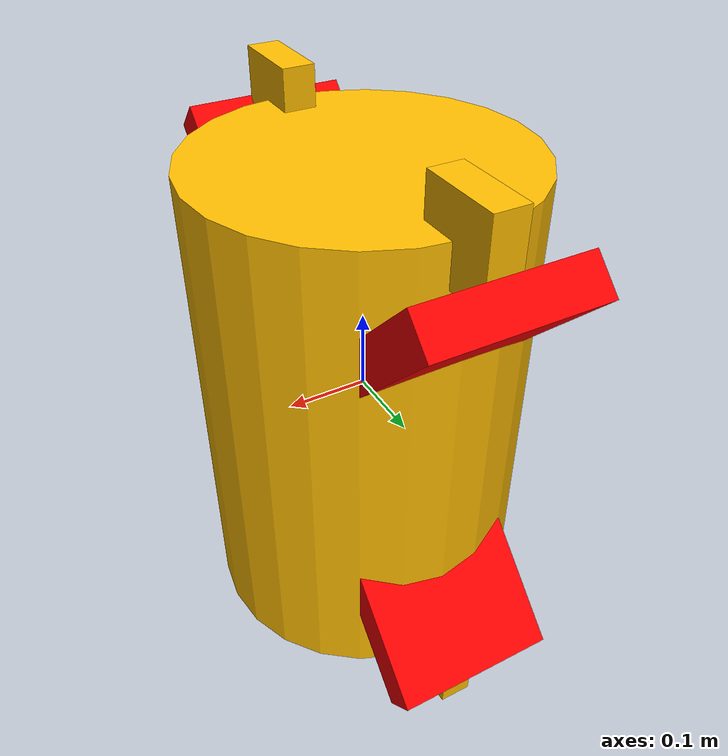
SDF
<?xml version="1.0"?>
<sdf version="1.6">
  <model name="SousMarin_Config1_v1">
    <!-- Body -->
    <link name="Chassis">
      <inertial>
        <mass>10</mass>
        <inertia>
          <ixx>1.825</ixx>
          <ixy>0</ixy>
          <ixz>0</ixz>
          <iyy>1.825</iyy>
          <iyz>0</iyz>
          <izz>0.05</izz>
        </inertia>
      </inertial>

      <collision name="main_body">
        <geometry>
          <cylinder>
            <radius>0.2</radius>
            <length>0.6</length>
          </cylinder>
        </geometry>
      </collision>

      <visual name="visual">
        <geometry>
          <cylinder>
            <radius>0.2</radius>
            <length>0.6</length>
          </cylinder>
        </geometry>
        <material>
            <ambient>1 0.74 0 1</ambient>
            <diffuse>1 0.74 0 1</diffuse>
            <specular>1 0.74 0 1</specular>
        </material>
      </visual>

      <sensor name="imu_sensor" type="imu">
        <always_on>1</always_on>
        <update_rate>250</update_rate>
        <topic>imu</topic>
        <visualize>true</visualize>
        <imu>
            <enable_orientation>0</enable_orientation>
            <angular_velocity>
                <x>
                    <noise type="gaussian">
                        <mean>0</mean>
                        <stddev>0.009</stddev>
                        <bias_mean>0.00075</bias_mean>
                        <bias_stddev>0.005</bias_stddev>
                        <dynamic_bias_stddev>0.00002</dynamic_bias_stddev>
                        <dynamic_bias_correlation_time>400.0</dynamic_bias_correlation_time>
                        <precision>0.00025</precision>
                    </noise>
                </x>
                <y>
                    <noise type="gaussian">
                        <mean>0
                        </mean>
                        <stddev>0.009
                        </stddev>
                        <bias_mean>0.00075
                        </bias_mean>
                        <bias_stddev>0.005
                        </bias_stddev>
                        <dynamic_bias_stddev>0.00002
                        </dynamic_bias_stddev>
                        <dynamic_bias_correlation_time>400.0
                        </dynamic_bias_correlation_time>
                        <precision>0.00025
                        </precision>
                    </noise>
                </y>
                <z>
                    <noise type="gaussian">
                        <mean>0
                        </mean>
                        <stddev>0.009
                        </stddev>
                        <bias_mean>0.00075
                        </bias_mean>
                        <bias_stddev>0.005
                        </bias_stddev>
                        <dynamic_bias_stddev>0.00002
                        </dynamic_bias_stddev>
                        <dynamic_bias_correlation_time>400.0
                        </dynamic_bias_correlation_time>
                        <precision>0.00025
                        </precision>
                    </noise>
                </z>
            </angular_velocity>
            <linear_acceleration>
                <x>
                    <noise type="gaussian">
                        <mean>0
                        </mean>
                        <stddev>0.021
                        </stddev>
                        <bias_mean>0.05
                        </bias_mean>
                        <bias_stddev>0.0075
                        </bias_stddev>
                        <dynamic_bias_stddev>0.000375
                        </dynamic_bias_stddev>
                        <dynamic_bias_correlation_time>175.0
                        </dynamic_bias_correlation_time>
                        <precision>0.005
                        </precision>
                    </noise>
                </x>
                <y>
                    <noise type="gaussian">
                        <mean>0
                        </mean>
                        <stddev>0.021
                        </stddev>
                        <bias_mean>0.05
                        </bias_mean>
                        <bias_stddev>0.0075
                        </bias_stddev>
                        <dynamic_bias_stddev>0.000375
                        </dynamic_bias_stddev>
                        <dynamic_bias_correlation_time>175.0
                        </dynamic_bias_correlation_time>
                        <precision>0.005
                        </precision>
                    </noise>
                </y>
                <z>
                    <noise type="gaussian">
                        <mean>0
                        </mean>
                        <stddev>0.021
                        </stddev>
                        <bias_mean>0.05
                        </bias_mean>
                        <bias_stddev>0.0075
                        </bias_stddev>
                        <dynamic_bias_stddev>0.000375
                        </dynamic_bias_stddev>
                        <dynamic_bias_correlation_time>175.0
                        </dynamic_bias_correlation_time>
                        <precision>0.005
                        </precision>
                    </noise>
                </z>
            </linear_acceleration>
        </imu>
      </sensor>

      <sensor name="gps" type="navsat">
          <always_on>1</always_on>
          <update_rate>1</update_rate>
          <topic>gps</topic>
          <visualize>true</visualize>
      </sensor>

      <sensor name="magnetometer" type="magnetometer">
          <always_on>1</always_on>
          <update_rate>20</update_rate>
          <topic>magnetometer</topic>
          <visualize>true</visualize>
          <magnetometer>
              <x>
                  <noise type="gaussian">
                      <mean>0.000000080
                      </mean>
                      <bias_mean>0.000000400
                      </bias_mean>
                  </noise>
              </x>
              <y>
                  <noise type="gaussian">
                      <mean>0.000000080
                      </mean>
                      <bias_mean>0.000000400
                      </bias_mean>
                  </noise>
              </y>
              <z>
                  <noise type="gaussian">
                      <mean>0.000000080
                      </mean>
                      <bias_mean>0.000000400
                      </bias_mean>
                  </noise>
              </z>
          </magnetometer>
      </sensor>

      <sensor name="scan_omni" type="gpu_lidar">
          <pose>0.21 0 0 0 0 0</pose>
          <update_rate>10</update_rate>
          <topic>gpu_lidar</topic>
          <visualize>true</visualize>
          <lidar>
              <scan>
                  <horizontal>
                      <!-- Real samples value is 1800 -->
                      <samples>1800
                      </samples>
                      <resolution>1
                      </resolution>
                      <min_angle>-3.141592654
                      </min_angle>
                      <max_angle>3.141592654
                      </max_angle>
                  </horizontal>
                  <vertical>
                      <samples>16
                      </samples>
                      <resolution>1
                      </resolution>
                      <min_angle>-0.261799388
                      </min_angle>
                      <max_angle>0.261799388
                      </max_angle>
                  </vertical>
              </scan>
              <range>
                  <min>0.2
                  </min>
                  <max>100.0
                  </max>
                  <resolution>0.01
                  </resolution>
              </range>
              <noise>
                  <type>gaussian
                  </type>
                  <mean>0
                  </mean>
                  <!-- Change the sdfdev value to 0.01 to add noise in to the sensor. You can set other values if you want. -->
                  <stddev>0.01
                  </stddev>
              </noise>
          </lidar>
          <always_on>false
          </always_on>
          <visualize>false
          </visualize>
      </sensor>

      <sensor name="camera_front" type="camera">
          <pose>0 0 0.3 0 -1.57 0</pose>
          <always_on>1</always_on>
          <update_rate>20</update_rate>
          <topic>camera_front</topic>
          <visualize>true</visualize>
          <camera name="camera_front">
              <horizontal_fov>2</horizontal_fov>
              <lens>
                  <intrinsics>
                    <!-- fx = fy = width / ( 2 * tan (hfov / 2 ) ) -->
                    <fx>1108.5</fx>
                    <fy>1108.5</fy>
                    <!-- cx = ( width + 1 ) / 2 -->
                    <cx>640.5</cx>
                    <!-- cy = ( height + 1 ) / 2 -->
                    <cy>480.5</cy>
                    <s>0</s>
                  </intrinsics>
              </lens>
              <distortion>
                  <k1>0.0</k1>
                  <k2>0.0</k2>
                  <k3>0.0</k3>
                  <p1>0.0</p1>
                  <p2>0.0</p2>
                  <center>0.5 0.5</center>
              </distortion>
              <image>
                  <width>1280</width>
                  <height>960</height>
                  <format>R8G8B8</format>
              </image>
              <clip>
                  <near>0.02</near>
                  <far>300</far>
              </clip>
              <noise>
                  <type>gaussian</type>
                  <mean>0</mean>
                  <stddev>0.007</stddev>
              </noise>
          </camera>
      </sensor>

    </link>

    <link name="Moteur1">
      <pose relative_to="Chassis">0 0.2 0.2 0.79 0 0</pose>
      <inertial>
        <mass>0.2</mass>
        <inertia>
          <ixx>4.25E-3</ixx>
          <ixy>0</ixy>
          <ixz>0</ixz>
          <iyy>4.25E-3</iyy>
          <iyz>0</iyz>
          <izz>8E-3</izz>
        </inertia>
      </inertial>

      <collision name="collision">
        <geometry>
          <box>
            <size>0.2 0.2 0.05</size>
          </box>
        </geometry>
      </collision>

      <visual name= "visual">
        <geometry>
          <box>
            <size>0.2 0.2 0.05</size>
          </box>
        </geometry>
        <material>
            <ambient>1 0 0 1</ambient>
            <diffuse>1 0 0 1</diffuse>
            <specular>1 0 0 1</specular>
        </material>
      </visual>
    </link>

    <joint name="Chassis_Moteur1" type="fixed">
      <parent>Chassis</parent>
      <child>Moteur1</child>
    </joint>

    <link name="Moteur2">
      <pose relative_to="Chassis">0 0.2 -0.2 -0.79 0 0</pose>
      <inertial>
        <mass>0.2</mass>
        <inertia>
          <ixx>4.25E-3</ixx>
          <ixy>0</ixy>
          <ixz>0</ixz>
          <iyy>4.25E-3</iyy>
          <iyz>0</iyz>
          <izz>8E-3</izz>
        </inertia>
      </inertial>

      <collision name="collision">
        <geometry>
          <box>
            <size>0.2 0.2 0.05</size>
          </box>
        </geometry>
      </collision>

      <visual name= "visual">
        <geometry>
          <box>
            <size>0.2 0.2 0.05</size>
          </box>
        </geometry>
        <material>
            <ambient>1 0 0 1</ambient>
            <diffuse>1 0 0 1</diffuse>
            <specular>1 0 0 1</specular>
        </material>
      </visual>
    </link>

    <joint name="Chassis_Moteur2" type="fixed">
      <parent>Chassis</parent>
      <child>Moteur2</child>
    </joint>

    <link name="Moteur3">
      <pose relative_to="Chassis">0 -0.2 -0.2 0.79 0 0</pose>
      <inertial>
        <mass>0.2</mass>
        <inertia>
          <ixx>4.25E-3</ixx>
          <ixy>0</ixy>
          <ixz>0</ixz>
          <iyy>4.25E-3</iyy>
          <iyz>0</iyz>
          <izz>8E-3</izz>
        </inertia>
      </inertial>

      <collision name="collision">
        <geometry>
          <box>
            <size>0.2 0.2 0.05</size>
          </box>
        </geometry>
      </collision>

      <visual name= "visual">
        <geometry>
          <box>
            <size>0.2 0.2 0.05</size>
          </box>
        </geometry>
        <material>
            <ambient>1 0 0 1</ambient>
            <diffuse>1 0 0 1</diffuse>
            <specular>1 0 0 1</specular>
        </material>
      </visual>
    </link>

    <joint name="Chassis_Moteur3" type="fixed">
      <parent>Chassis</parent>
      <child>Moteur3</child>
    </joint>

    <link name="Moteur4">
      <pose relative_to="Chassis">0 -0.2 0.2 -0.79 0 0</pose>
      <inertial>
        <mass>0.2</mass>
        <inertia>
          <ixx>4.25E-3</ixx>
          <ixy>0</ixy>
          <ixz>0</ixz>
          <iyy>4.25E-3</iyy>
          <iyz>0</iyz>
          <izz>8E-3</izz>
        </inertia>
      </inertial>

      <collision name="collision">
        <geometry>
          <box>
            <size>0.2 0.2 0.05</size>
          </box>
        </geometry>
      </collision>

      <visual name= "visual">
        <geometry>
          <box>
            <size>0.2 0.2 0.05</size>
          </box>
        </geometry>
        <material>
            <ambient>1 0 0 1</ambient>
            <diffuse>1 0 0 1</diffuse>
            <specular>1 0 0 1</specular>
        </material>
      </visual>
    </link>

    <joint name="Chassis_Moteur4" type="fixed">
      <parent>Chassis</parent>
      <child>Moteur4</child>
    </joint>

    <link name="MoteurProf1">
      <pose relative_to="Chassis">0 0.2 0.3 0 1.57 0</pose>
      <inertial>
        <mass>0.2</mass>
        <inertia>
          <ixx>1.16E-3</ixx>
          <ixy>0</ixy>
          <ixz>0</ixz>
          <iyy>1.16E-3</iyy>
          <iyz>0</iyz>
          <izz>2E-3</izz>
        </inertia>
      </inertial>

      <collision name="collision">
        <geometry>
          <box>
            <size>0.1 0.1 0.04</size>
          </box>
        </geometry>
      </collision>

      <visual name= "visual">
        <geometry>
          <box>
            <size>0.1 0.1 0.04</size>
          </box>
        </geometry>
        <material>
            <ambient>1 0.74 0 1</ambient>
            <diffuse>1 0.74 0 1</diffuse>
            <specular>1 0.74 0 1</specular>
        </material>
      </visual>
    </link>

    <joint name="Chassis_MoteurProf1" type="fixed">
      <parent>Chassis</parent>
      <child>MoteurProf1</child>
    </joint>

    <link name="MoteurProf2">
      <pose relative_to="Chassis">0 0.2 -0.3 0 1.57 0</pose>
      <inertial>
        <mass>0.2</mass>
        <inertia>
          <ixx>1.16E-3</ixx>
          <ixy>0</ixy>
          <ixz>0</ixz>
          <iyy>1.16E-3</iyy>
          <iyz>0</iyz>
          <izz>2E-3</izz>
        </inertia>
      </inertial>

      <collision name="collision">
        <geometry>
          <box>
            <size>0.1 0.1 0.04</size>
          </box>
        </geometry>
      </collision>

      <visual name= "visual">
        <geometry>
          <box>
            <size>0.1 0.1 0.04</size>
          </box>
        </geometry>
        <material>
            <ambient>1 0.74 0 1</ambient>
            <diffuse>1 0.74 0 1</diffuse>
            <specular>1 0.74 0 1</specular>
        </material>
      </visual>
    </link>

    <joint name="Chassis_MoteurProf2" type="fixed">
      <parent>Chassis</parent>
      <child>MoteurProf2</child>
    </joint>

    <link name="MoteurProf3">
      <pose relative_to="Chassis">0 -0.2 -0.3 0 1.57 0</pose>
      <inertial>
        <mass>0.2</mass>
        <inertia>
          <ixx>1.16E-3</ixx>
          <ixy>0</ixy>
          <ixz>0</ixz>
          <iyy>1.16E-3</iyy>
          <iyz>0</iyz>
          <izz>2E-3</izz>
        </inertia>
      </inertial>

      <collision name="collision">
        <geometry>
          <box>
            <size>0.1 0.1 0.04</size>
          </box>
        </geometry>
      </collision>

      <visual name= "visual">
        <geometry>
          <box>
            <size>0.1 0.1 0.04</size>
          </box>
        </geometry>
        <material>
            <ambient>1 0.74 0 1</ambient>
            <diffuse>1 0.74 0 1</diffuse>
            <specular>1 0.74 0 1</specular>
        </material>
      </visual>
    </link>

    <joint name="Chassis_MoteurProf3" type="fixed">
      <parent>Chassis</parent>
      <child>MoteurProf3</child>
    </joint>

    <link name="MoteurProf4">
      <pose relative_to="Chassis">0 -0.2 0.3 0 1.57 0</pose>
      <inertial>
        <mass>0.2</mass>
        <inertia>
          <ixx>1.16E-3</ixx>
          <ixy>0</ixy>
          <ixz>0</ixz>
          <iyy>1.16E-3</iyy>
          <iyz>0</iyz>
          <izz>2E-3</izz>
        </inertia>
      </inertial>

      <collision name="collision">
        <geometry>
          <box>
            <size>0.1 0.1 0.04</size>
          </box>
        </geometry>
      </collision>

      <visual name= "visual">
        <geometry>
          <box>
            <size>0.1 0.1 0.04</size>
          </box>
        </geometry>
        <material>
            <ambient>1 0.74 0 1</ambient>
            <diffuse>1 0.74 0 1</diffuse>
            <specular>1 0.74 0 1</specular>
        </material>
      </visual>
    </link>

    <joint name="Chassis_MoteurProf4" type="fixed">
      <parent>Chassis</parent>
      <child>MoteurProf4</child>
    </joint>

    <plugin
      filename="gz-sim-odometry-publisher-system"
      name="gz::sim::systems::OdometryPublisher">
      <dimensions>3</dimensions>
    </plugin>

  </model>
</sdf>
